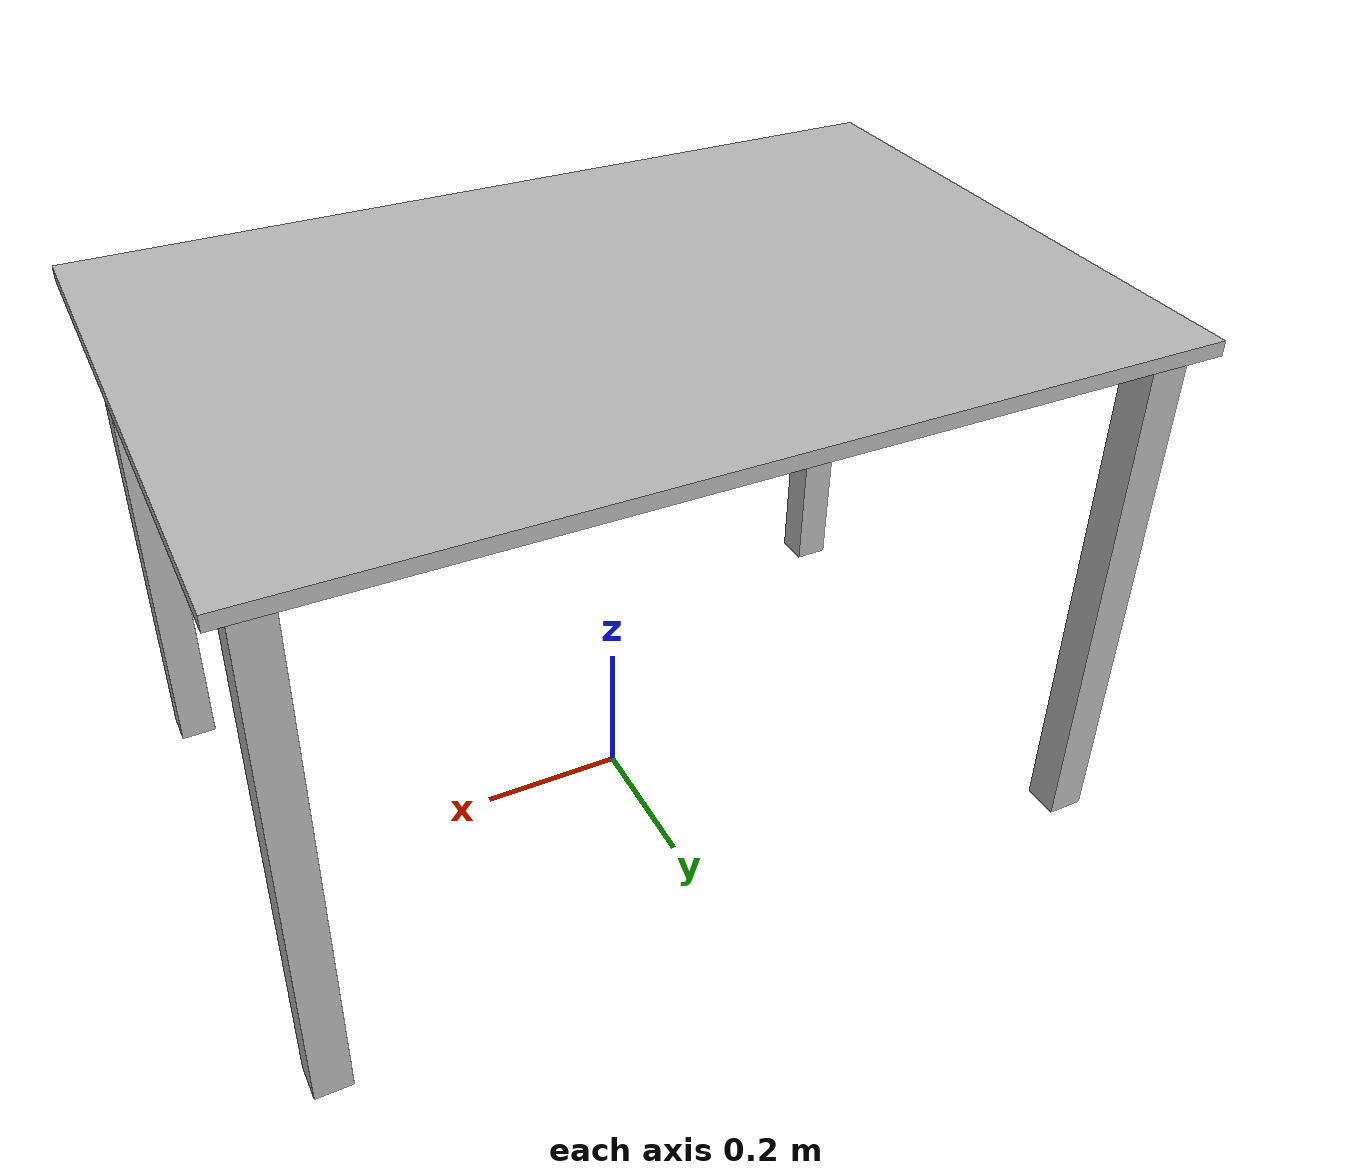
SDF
<?xml version="1.0" ?>
<sdf version="1.6">
  <model name="table">
    <static>true</static>
    <link name="1_link">
      <collision name="1_col">
        <geometry>
          <box>
            <size>1.2 0.8 0.02</size>
          </box>
        </geometry>
      </collision>
      <visual name="1_vis">
        <geometry>
          <box>
            <size>1.2 0.8 0.02</size>
          </box>
        </geometry>
      </visual>
      <pose>0 0 0.75 0 0 0</pose>
    </link>
    <link name="2_link">
      <collision name="2_col">
        <geometry>
          <box>
            <size>0.05 0.05 0.74</size>
          </box>
        </geometry>
      </collision>
      <visual name="2_vis">
        <geometry>
          <box>
            <size>0.05 0.05 0.74</size>
          </box>
        </geometry>
      </visual>
      <pose>-0.55 -0.35 0.37 0 0 0</pose>
    </link>
    <link name="3_link">
      <collision name="3_col">
        <geometry>
          <box>
            <size>0.05 0.05 0.74</size>
          </box>
        </geometry>
      </collision>
      <visual name="3_vis">
        <geometry>
          <box>
            <size>0.05 0.05 0.74</size>
          </box>
        </geometry>
      </visual>
      <pose>0.55 -0.35 0.37 0 0 0</pose>
    </link>
    <link name="4_link">
      <collision name="4_col">
        <geometry>
          <box>
            <size>0.05 0.05 0.74</size>
          </box>
        </geometry>
      </collision>
      <visual name="4_vis">
        <geometry>
          <box>
            <size>0.05 0.05 0.74</size>
          </box>
        </geometry>
      </visual>
      <pose>-0.55 0.35 0.37 0 0 0</pose>
    </link>
    <link name="5_link">
      <collision name="5_col">
        <geometry>
          <box>
            <size>0.05 0.05 0.74</size>
          </box>
        </geometry>
      </collision>
      <visual name="5_vis">
        <geometry>
          <box>
            <size>0.05 0.05 0.74</size>
          </box>
        </geometry>
      </visual>
      <pose>0.55 0.35 0.37 0 0 0</pose>
    </link>
  </model>
</sdf>
